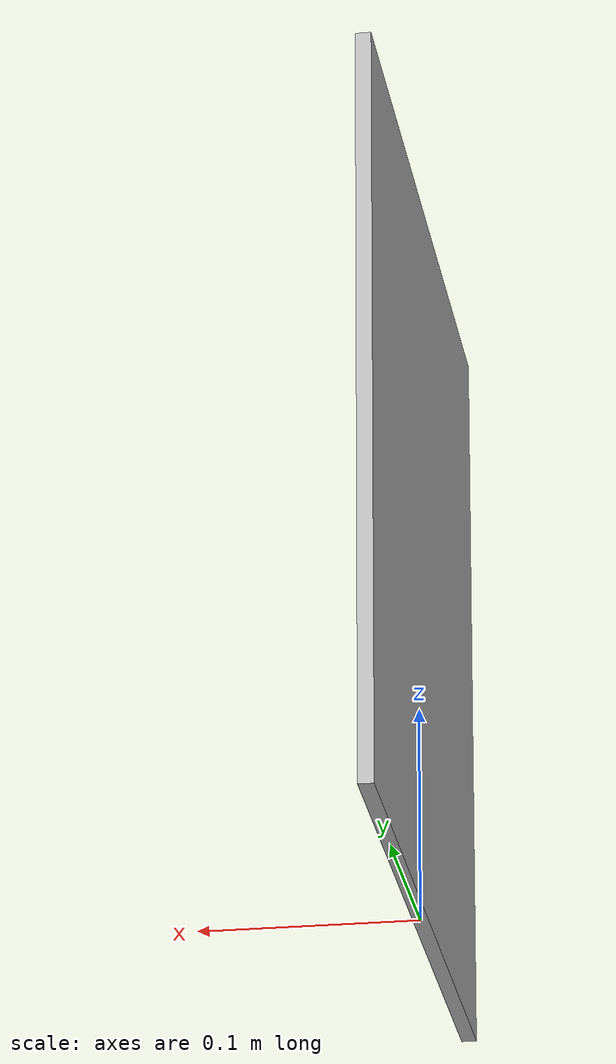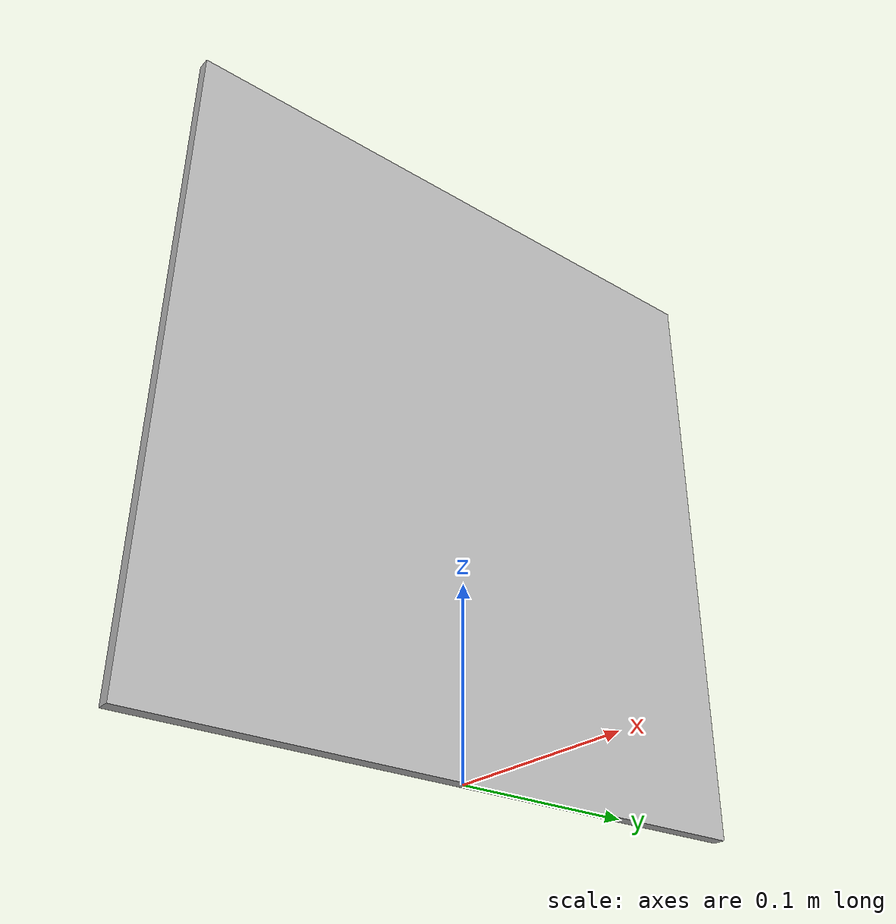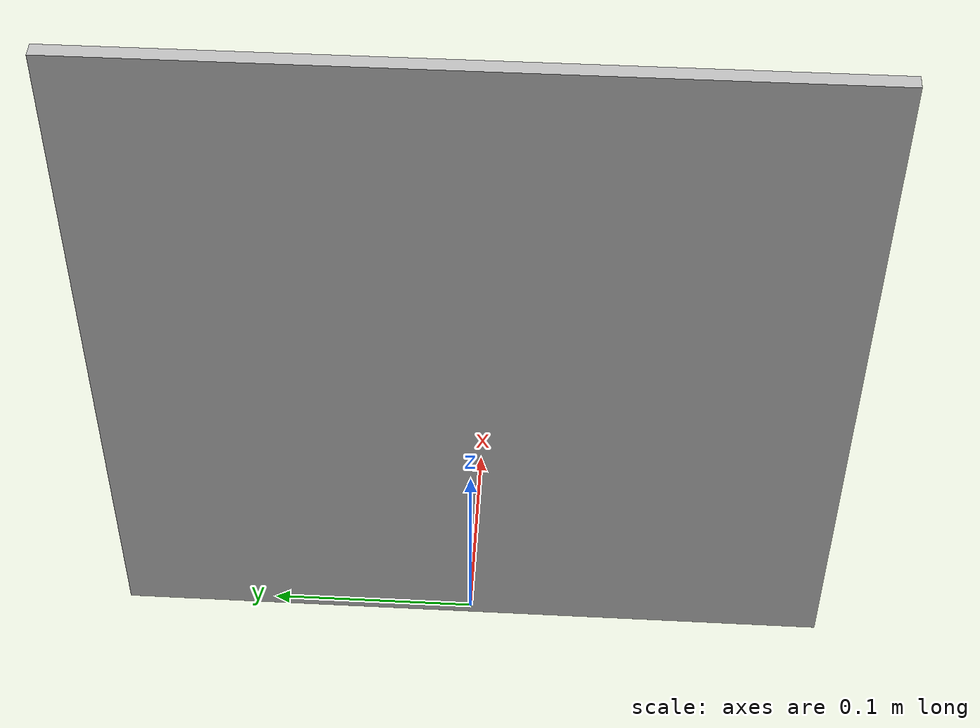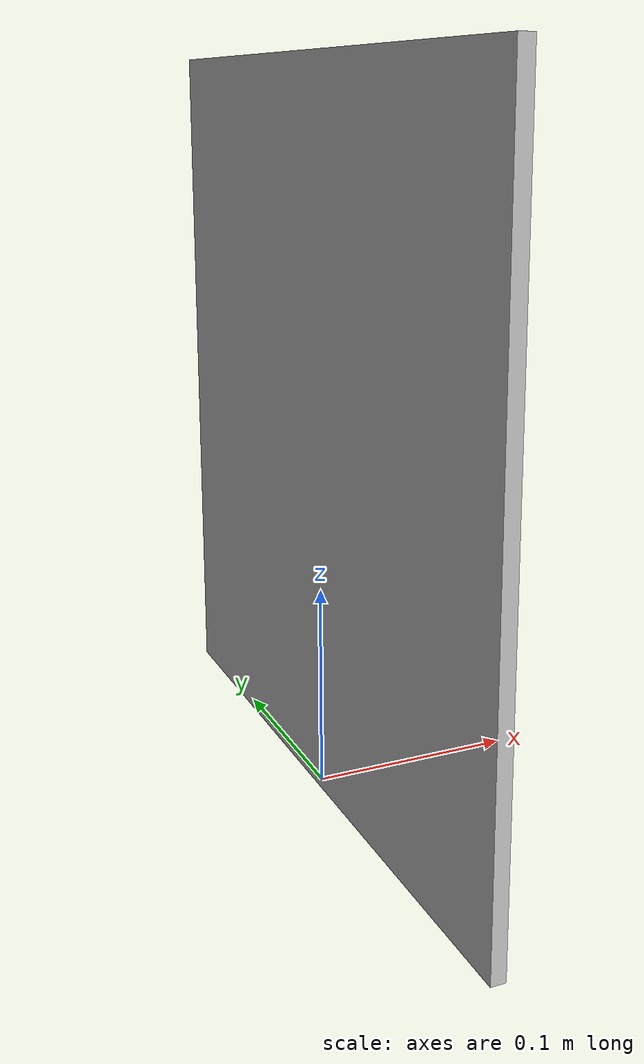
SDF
<?xml version="1.0" ?><sdf version="1.5">
  <model name="target4">
    <static>true</static>
    <link name="link">
      <visual name="visual">
        <geometry>
          <mesh>
            <uri>model://target4/meshes/target4.dae</uri>
          <scale>0.7 0.7 0.7</scale></mesh>
        </geometry>
      </visual>
    </link>
  </model>
</sdf>
